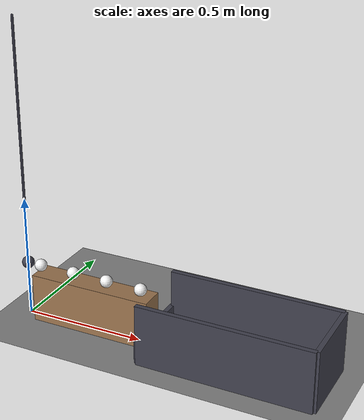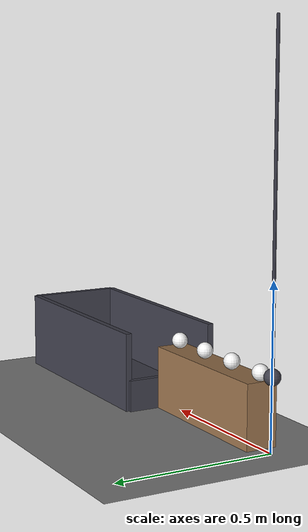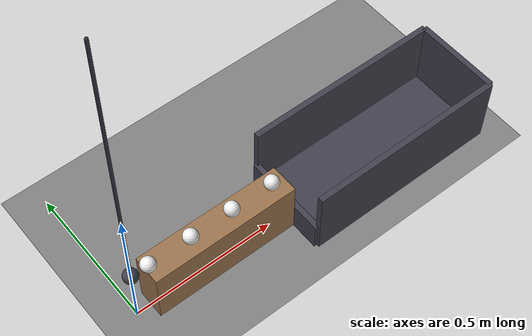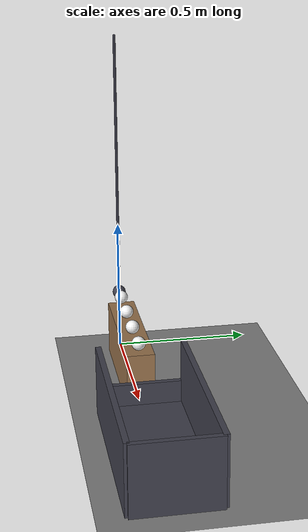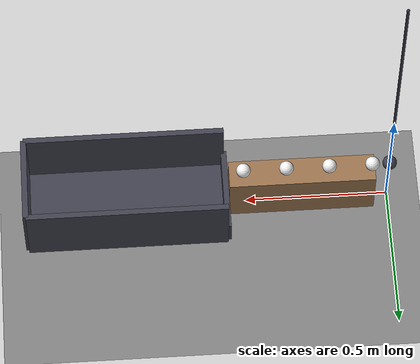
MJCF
<mujoco model="pendulum_chain_into_box">
  <compiler angle="radian"/>
  <option timestep="0.002"/>
  <worldbody>
    <geom name="floor" type="plane" size="8 8 0.1" friction="0.8 0.005 0.002"/>
    <body name="pendulum" pos="0 0 1.225">
      <joint name="pendulum_hinge" type="hinge" pos="0 0 0" axis="0 1 0"/>
      <geom name="pendulum" type="sphere" pos="0 0 -1" size="0.025" mass="0.3" friction="0.1 0.001 0.0005" solref="0.01 0.2" rgba="0.25 0.25 0.3 1"/>
      <geom name="pendulum rod" type="capsule" size="0.005" fromto="0 0 0 0 0 -0.975" mass="0.01" contype="0" conaffinity="0" rgba="0.2 0.2 0.25 1"/>
    </body>
    <body name="rail">
      <geom name="rail" type="box" pos="0.305 0 0.1" size="0.255 0.05 0.1" friction="0.05 0.001 0.0005" rgba="0.6 0.45 0.3 1"/>
    </body>
    <body name="ball1" pos="0.06 0 0.225">
      <freejoint/>
      <geom name="ball1" type="sphere" pos="0 0 0" size="0.025" mass="0.1" condim="6" friction="0.1 0.001 0.0005" solref="0.01 0.2" rgba="0.95 0.95 0.95 1"/>
    </body>
    <body name="ball2" pos="0.21 0 0.225">
      <freejoint/>
      <geom name="ball2" type="sphere" pos="0 0 0" size="0.025" mass="0.1" condim="6" friction="0.1 0.001 0.0005" solref="0.01 0.2" rgba="0.95 0.95 0.95 1"/>
    </body>
    <body name="ball3" pos="0.36 0 0.225">
      <freejoint/>
      <geom name="ball3" type="sphere" pos="0 0 0" size="0.025" mass="0.1" condim="6" friction="0.1 0.001 0.0005" solref="0.01 0.2" rgba="0.95 0.95 0.95 1"/>
    </body>
    <body name="ball4" pos="0.51 0 0.225">
      <freejoint/>
      <geom name="ball4" type="sphere" pos="0 0 0" size="0.025" mass="0.1" condim="6" friction="0.1 0.001 0.0005" solref="0.01 0.2" rgba="0.95 0.95 0.95 1"/>
    </body>
    <body name="box">
      <geom name="box_base" type="box" pos="0.92 0 0.01" size="0.35 0.15 0.01" friction="0.9 0.05 0.03" solref="0.01 1" rgba="0.25 0.25 0.3 1"/>
      <geom name="box_near_wall" type="box" pos="0.57 0 0.05" size="0.01 0.15 0.05" friction="0.9 0.05 0.03" solref="0.01 1" rgba="0.25 0.25 0.3 1"/>
      <geom name="box_far_wall" type="box" pos="1.27 0 0.125" size="0.01 0.15 0.125" friction="0.9 0.05 0.03" solref="0.01 1" rgba="0.25 0.25 0.3 1"/>
      <geom name="box_left_wall" type="box" pos="0.92 0.15 0.125" size="0.35 0.01 0.125" friction="0.9 0.05 0.03" solref="0.01 1" rgba="0.25 0.25 0.3 1"/>
      <geom name="box_right_wall" type="box" pos="0.92 -0.15 0.125" size="0.35 0.01 0.125" friction="0.9 0.05 0.03" solref="0.01 1" rgba="0.25 0.25 0.3 1"/>
    </body>
  </worldbody>
  <keyframe>
    <key name="start" qpos="1.0472 0.06 0 0.225 1 0 0 0 0.21 0 0.225 1 0 0 0 0.36 0 0.225 1 0 0 0 0.51 0 0.225 1 0 0 0" qvel="0 0 0 0 0 0 0 0 0 0 0 0 0 0 0 0 0 0 0 0 0 0 0 0 0"/>
  </keyframe>
</mujoco>
